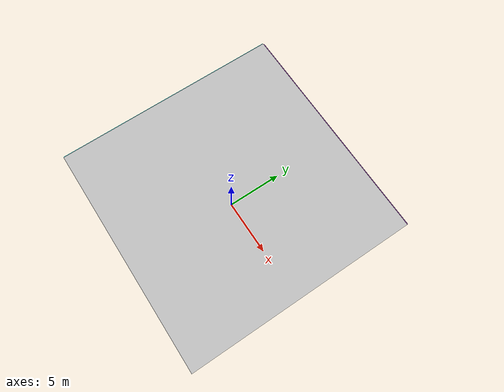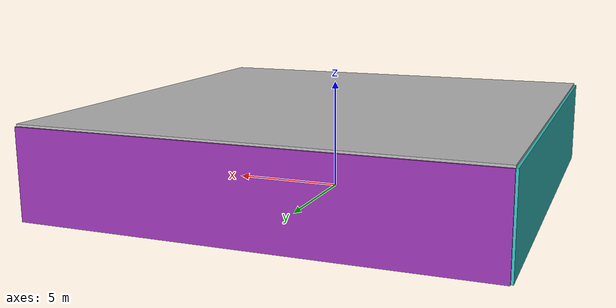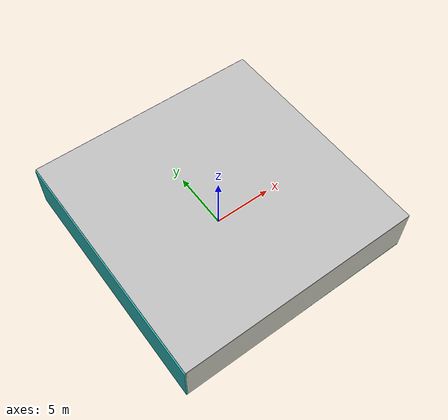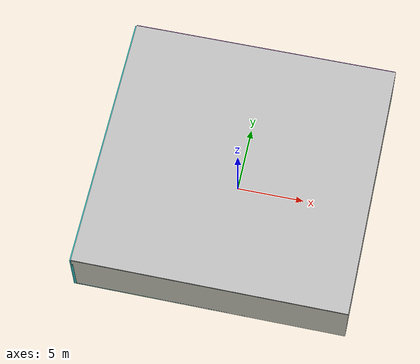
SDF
<sdf version="1.4">
 <world name="default">
  <physics type="ode">
   <max_step_size>0.001</max_step_size>
   <real_time_factor>1</real_time_factor>
   <real_time_update_rate>1000</real_time_update_rate>
   <gravity>0 0 -9.8</gravity>
  </physics>
  <scene><ambient>0.4 0.4 0.4 1</ambient><background>0.7 0.7 0.7 1</background><shadows>1</shadows></scene>
  <model name="Surrounding">
   <static>1</static>
   <link name="Ceiling">
    <collision name="Ceiling_Collision"><geometry><box><size>20 20 0.1</size></box></geometry></collision>
    <visual name="Ceiling_Visual">
     <geometry><box><size>20 20 0.1</size></box></geometry>
     <material>
      <script><uri>file://media/materials/scripts/gazebo.material</uri><name>Gazebo/LightOn</name></script>
     </material>
    </visual>
    <pose>0 0 4.05 0 0 0</pose>
   </link>
   <link name="Wall_South">
    <collision name="Wall_South_Collision">
     <geometry><box><size>20 0 4</size></box></geometry>
     <pose>0 0 2 0 -0 0</pose>
    </collision>
    <visual name="Wall_South_Visual">
     <pose>0 0 2 0 -0 0</pose>
     <geometry><box><size>20 0 4</size></box></geometry>
     <material>
      <script><uri>file://media/materials/scripts/gazebo.material</uri><name>Gazebo/PaintedWall</name></script>
     </material>
    </visual>
    <velocity_decay><linear>0</linear><angular>0</angular></velocity_decay>
    <pose>0 -10 0 0 -0 0</pose>
   </link>
   <link name="Wall_East">
    <collision name="Wall_21_Collision">
     <geometry><box><size>20 0 4</size></box></geometry>
     <pose>0 0 2 0 -0 0</pose>
    </collision>
    <visual name="Wall_21_Visual">
     <pose>0 0 2 0 -0 0</pose>
     <geometry><box><size>20 0 4</size></box></geometry>
     <material>
      <script><uri>file://media/materials/scripts/gazebo.material</uri><name>Gazebo/LightOn</name></script>
     </material>
    </visual>
    <velocity_decay><linear>0</linear><angular>0</angular></velocity_decay>
    <pose>10 0 0 0 -0 1.5708</pose>
   </link>
   <link name="Wall_North">
    <collision name="Wall_22_Collision">
     <geometry><box><size>20 0.2 4</size></box></geometry>
     <pose>0 0 2 0 -0 0</pose>
    </collision>
    <visual name="Wall_22_Visual">
     <pose>0 0 2 0 -0 0</pose>
     <geometry><box><size>20 0.2 4</size></box></geometry>
     <material>
      <script><uri>file://media/materials/scripts/gazebo.material</uri><name>Gazebo/Purple</name></script>
     </material>
    </visual>
    <velocity_decay><linear>0</linear><angular>0</angular></velocity_decay>
    <pose>0 10 0 0 -0 0</pose>
   </link>
   <link name="Wall_West">
    <collision name="Wall_23_Collision">
     <geometry><box><size>20 0.2 4</size></box></geometry>
     <pose>0 0 2 0 -0 0</pose>
    </collision>
    <visual name="Wall_23_Visual">
     <pose>0 0 2 0 -0 0</pose>
     <geometry><box><size>20 0.2 4</size></box></geometry>
     <material>
      <script><uri>file://media/materials/scripts/gazebo.material</uri><name>Gazebo/Turquoise</name></script>
     </material>
    </visual>
    <velocity_decay><linear>0</linear><angular>0</angular></velocity_decay>
    <pose>-10 0 0 0 0 -1.5708</pose>
   </link>
   <link name="Ground_link">
    <collision name="collision">
     <pose>0 0 .05 0 -0 0</pose>
     <geometry><box><size>20 20 0.1</size></box></geometry>
    </collision>
    <visual name="visual">
     <pose>0 0 .05 0 -0 0</pose>
     <geometry><box><size>20 20 0.1</size></box></geometry>
     <material>
      <script><uri>file://media/materials/scripts/gazebo.material</uri><name>Gazebo/TurquoiseGlow</name></script>
     </material>
    </visual>
   </link>
   <static>1</static>
  </model>
  <spherical_coordinates>
   <surface_model>EARTH_WGS84</surface_model>
   <latitude_deg>0</latitude_deg>
   <longitude_deg>0</longitude_deg>
   <elevation>0</elevation>
   <heading_deg>0</heading_deg>
  </spherical_coordinates>
  <light name="lightball_0" type="diffuse">
   <diffuse>0.8 0.8 0.8 1</diffuse>
   <specular>0.2 0.2 0.2 1</specular>
   <attenuation>
    <range>100</range>
    <constant>0.7</constant>
    <linear>0.01</linear>
    <quadratic>0.001</quadratic>
   </attenuation>
   <direction>-0.5 0.1 -0.9</direction>
   <pose>-9.89975269051 8.43248369843 2.06150548252 0 0 0</pose>
  </light>
  <light name="lightball_1" type="diffuse">
   <diffuse>0.8 0.8 0.8 1</diffuse>
   <specular>0.2 0.2 0.2 1</specular>
   <attenuation>
    <range>100</range>
    <constant>0.7</constant>
    <linear>0.01</linear>
    <quadratic>0.001</quadratic>
   </attenuation>
   <direction>-0.5 0.1 -0.9</direction>
   <pose>5.02846828001 -9.54278159894 1.25798464029 0 0 0</pose>
  </light>
  <light name="lightball_2" type="diffuse">
   <diffuse>0.8 0.8 0.8 1</diffuse>
   <specular>0.2 0.2 0.2 1</specular>
   <attenuation>
    <range>100</range>
    <constant>0.7</constant>
    <linear>0.01</linear>
    <quadratic>0.001</quadratic>
   </attenuation>
   <direction>-0.5 0.1 -0.9</direction>
   <pose>-8.77798007786 5.29573162817 1.37481632016 0 0 0</pose>
  </light>
  <light name="lightball_3" type="diffuse">
   <diffuse>0.8 0.8 0.8 1</diffuse>
   <specular>0.2 0.2 0.2 1</specular>
   <attenuation>
    <range>100</range>
    <constant>0.7</constant>
    <linear>0.01</linear>
    <quadratic>0.001</quadratic>
   </attenuation>
   <direction>-0.5 0.1 -0.9</direction>
   <pose>2.53090638657 2.37317381469 0.822775719798 0 0 0</pose>
  </light>
  <light name="lightball_4" type="diffuse">
   <diffuse>0.8 0.8 0.8 1</diffuse>
   <specular>0.2 0.2 0.2 1</specular>
   <attenuation>
    <range>100</range>
    <constant>0.7</constant>
    <linear>0.01</linear>
    <quadratic>0.001</quadratic>
   </attenuation>
   <direction>-0.5 0.1 -0.9</direction>
   <pose>-3.97311224942 0.950142960276 0.919212250808 0 0 0</pose>
  </light>
  <light name="lightball_5" type="diffuse">
   <diffuse>0.8 0.8 0.8 1</diffuse>
   <specular>0.2 0.2 0.2 1</specular>
   <attenuation>
    <range>100</range>
    <constant>0.7</constant>
    <linear>0.01</linear>
    <quadratic>0.001</quadratic>
   </attenuation>
   <direction>-0.5 0.1 -0.9</direction>
   <pose>0.334188295102 1.66099004249 1.29875386388 0 0 0</pose>
  </light>
  <light name="lightball_6" type="diffuse">
   <diffuse>0.8 0.8 0.8 1</diffuse>
   <specular>0.2 0.2 0.2 1</specular>
   <attenuation>
    <range>100</range>
    <constant>0.7</constant>
    <linear>0.01</linear>
    <quadratic>0.001</quadratic>
   </attenuation>
   <direction>-0.5 0.1 -0.9</direction>
   <pose>-1.50971142817 -1.71838163515 0.521801000497 0 0 0</pose>
  </light>
  <light name="lightball_7" type="diffuse">
   <diffuse>0.8 0.8 0.8 1</diffuse>
   <specular>0.2 0.2 0.2 1</specular>
   <attenuation>
    <range>100</range>
    <constant>0.7</constant>
    <linear>0.01</linear>
    <quadratic>0.001</quadratic>
   </attenuation>
   <direction>-0.5 0.1 -0.9</direction>
   <pose>1.61294514635 -7.75353151995 3.8431539121 0 0 0</pose>
  </light>
  <light name="lightball_8" type="diffuse">
   <diffuse>0.8 0.8 0.8 1</diffuse>
   <specular>0.2 0.2 0.2 1</specular>
   <attenuation>
    <range>100</range>
    <constant>0.7</constant>
    <linear>0.01</linear>
    <quadratic>0.001</quadratic>
   </attenuation>
   <direction>-0.5 0.1 -0.9</direction>
   <pose>-8.64337775967 1.5330101982 2.31584464536 0 0 0</pose>
  </light>
  <light name="lightball_9" type="diffuse">
   <diffuse>0.8 0.8 0.8 1</diffuse>
   <specular>0.2 0.2 0.2 1</specular>
   <attenuation>
    <range>100</range>
    <constant>0.7</constant>
    <linear>0.01</linear>
    <quadratic>0.001</quadratic>
   </attenuation>
   <direction>-0.5 0.1 -0.9</direction>
   <pose>-3.39358411244 -4.00401392965 0.780216949422 0 0 0</pose>
  </light>
  <light name="lightball_10" type="diffuse">
   <diffuse>0.8 0.8 0.8 1</diffuse>
   <specular>0.2 0.2 0.2 1</specular>
   <attenuation>
    <range>100</range>
    <constant>0.7</constant>
    <linear>0.01</linear>
    <quadratic>0.001</quadratic>
   </attenuation>
   <direction>-0.5 0.1 -0.9</direction>
   <pose>-7.39658613995 2.06264067239 3.51642648757 0 0 0</pose>
  </light>
  <light name="lightball_11" type="diffuse">
   <diffuse>0.8 0.8 0.8 1</diffuse>
   <specular>0.2 0.2 0.2 1</specular>
   <attenuation>
    <range>100</range>
    <constant>0.7</constant>
    <linear>0.01</linear>
    <quadratic>0.001</quadratic>
   </attenuation>
   <direction>-0.5 0.1 -0.9</direction>
   <pose>9.41773027921 0.904508482649 2.22865617701 0 0 0</pose>
  </light>
  <light name="lightball_12" type="diffuse">
   <diffuse>0.8 0.8 0.8 1</diffuse>
   <specular>0.2 0.2 0.2 1</specular>
   <attenuation>
    <range>100</range>
    <constant>0.7</constant>
    <linear>0.01</linear>
    <quadratic>0.001</quadratic>
   </attenuation>
   <direction>-0.5 0.1 -0.9</direction>
   <pose>-4.61401169993 4.8432530894 3.17573443893 0 0 0</pose>
  </light>
  <light name="lightball_13" type="diffuse">
   <diffuse>0.8 0.8 0.8 1</diffuse>
   <specular>0.2 0.2 0.2 1</specular>
   <attenuation>
    <range>100</range>
    <constant>0.7</constant>
    <linear>0.01</linear>
    <quadratic>0.001</quadratic>
   </attenuation>
   <direction>-0.5 0.1 -0.9</direction>
   <pose>-1.3248045403 -4.70534900794 3.17630970271 0 0 0</pose>
  </light>
  <include><uri>model://cabinet</uri><pose>-7.17567072908 -7.83735037207 0 0 0 1.57185663818</pose></include>
  <include><uri>model://table</uri><pose>-3.85720529588 -7.00738203352 0 0 0 0.208759235908</pose></include>
  <include><uri>model://cabinet</uri><pose>-4.01730315465 8.08396998807 0 0 0 1.18880313314</pose></include>
  <include><uri>model://cabinet</uri><pose>1.37325925247 2.09444454748 0 0 0 2.19381778943</pose></include>
  <include><uri>model://cabinet</uri><pose>7.21596668063 4.73351779323 0 0 0 1.06001832877</pose></include>
 </world>
</sdf>

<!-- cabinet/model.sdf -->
<sdf version="1.5">
  <model name="cabinet">
    <static>true</static>
    <link name="cabinet_bottom_plate">
      <inertial>
        <pose>0 0 -1 0 0 0</pose>
        <inertia>
          <ixx>2.050000</ixx>
          <ixy>0</ixy>
          <ixz>0</ixz>
          <iyy>2.050000</iyy>
          <iyz>0</iyz>
          <izz>2.050000</izz>
        </inertia>
        <mass>25.000000</mass>
      </inertial>
      <collision name="cabinet_bottom_plate_geom">
        <pose>0 0 0.010000 0 0 0</pose>
        <geometry>
          <box>
            <size>0.450000 0.450000 0.020000</size>
          </box>
        </geometry>
      </collision>
      <visual name="cabinet_bottom_plate_geom_visual">
        <pose>0 0 0.010000 0 0 0</pose>
        <geometry>
          <box>
            <size>0.450000 0.450000 0.020000</size>
          </box>
        </geometry>
        <material>
          <script>
            <uri>model://media/materials/scripts/gazebo.material</uri>
            <name>Gazebo/Wood</name>
          </script>
        </material>
      </visual>
      <collision name="cabinet_bottom_plate_geom_cabinet_back_plate">
        <pose>0.235000 0 0.510000 0 0 0</pose>
        <geometry>
          <box>
            <size>0.020000 0.450000 1.020000</size>
          </box>
        </geometry>
      </collision>
      <visual name="cabinet_bottom_plate_geom_cabinet_back_plate_visual">
        <pose>0.235000 0 0.510000 0 0 0</pose>
        <geometry>
          <box>
            <size>0.020000 0.450000 1.020000</size>
          </box>
        </geometry>
        <material>
          <script>
            <uri>model://media/materials/scripts/gazebo.material</uri>
            <name>Gazebo/Wood</name>
          </script>
        </material>
      </visual>
      <collision name="cabinet_bottom_plate_geom_cabinet_left_plate">
        <pose>0 0.235000 0.510000 0 0 0</pose>
        <geometry>
          <box>
            <size>0.450000 0.020000 1.020000</size>
          </box>
        </geometry>
      </collision>
      <visual name="cabinet_bottom_plate_geom_cabinet_left_plate_visual">
        <pose>0 0.235000 0.510000 0 0 0</pose>
        <geometry>
          <box>
            <size>0.450000 0.020000 1.020000</size>
          </box>
        </geometry>
        <material>
          <script>
            <uri>model://media/materials/scripts/gazebo.material</uri>
            <name>Gazebo/Wood</name>
          </script>
        </material>
      </visual>
      <collision name="cabinet_bottom_plate_geom_cabinet_middle_plate">
        <pose>0 0 0.510000 0 0 0</pose>
        <geometry>
          <box>
            <size>0.450000 0.450000 0.020000</size>
          </box>
        </geometry>
      </collision>
      <visual name="cabinet_bottom_plate_geom_cabinet_middle_plate_visual">
        <pose>0 0 0.510000 0 0 0</pose>
        <geometry>
          <box>
            <size>0.450000 0.450000 0.020000</size>
          </box>
        </geometry>
        <material>
          <script>
            <uri>model://media/materials/scripts/gazebo.material</uri>
            <name>Gazebo/Wood</name>
          </script>
        </material>
      </visual>
      <collision name="cabinet_bottom_plate_geom_cabinet_right_plate">
        <pose>0 -0.235000 0.510000 0 0 0</pose>
        <geometry>
          <box>
            <size>0.450000 0.020000 1.020000</size>
          </box>
        </geometry>
      </collision>
      <visual name="cabinet_bottom_plate_geom_cabinet_right_plate_visual">
        <pose>0 -0.235000 0.510000 0 0 0</pose>
        <geometry>
          <box>
            <size>0.450000 0.020000 1.020000</size>
          </box>
        </geometry>
        <material>
          <script>
            <uri>model://media/materials/scripts/gazebo.material</uri>
            <name>Gazebo/Wood</name>
          </script>
        </material>
      </visual>
      <collision name="cabinet_bottom_plate_geom_cabinet_top_plate">
        <pose>0 0 1.010000 0 0 0</pose>
        <geometry>
          <box>
            <size>0.450000 0.450000 0.020000</size>
          </box>
        </geometry>
      </collision>
      <visual name="cabinet_bottom_plate_geom_cabinet_top_plate_visual">
        <pose>0 0 1.010000 0 0 0</pose>
        <geometry>
          <box>
            <size>0.450000 0.450000 0.020000</size>
          </box>
        </geometry>
        <material>
          <script>
            <uri>model://media/materials/scripts/gazebo.material</uri>
            <name>Gazebo/Wood</name>
          </script>
        </material>
      </visual>
    </link>
  </model>
</sdf>

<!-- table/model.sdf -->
<sdf version="1.5">
  <model name="table">
    <static>true</static>
    <link name="link">
      <collision name="surface">
        <pose>0 0 1.0 0 0 0</pose>
        <geometry>
          <box>
            <size>1.5 0.8 0.03</size>
          </box>
        </geometry>
        <surface>
          <friction>
            <ode>
              <mu>0.6</mu>
              <mu2>0.6</mu2>
            </ode>
          </friction>
        </surface>
      </collision>
      <visual name="visual1">
        <pose>0 0 1.0 0 0 0</pose>
        <geometry>
          <box>
            <size>1.5 0.8 0.03</size>
          </box>
        </geometry>
        <material>
          <script>
            <uri>model://media/materials/scripts/gazebo.material</uri>
            <name>Gazebo/Wood</name>
          </script>
        </material>
      </visual>
      <collision name="front_left_leg">
        <pose>0.68 0.38 0.5 0 0 0</pose>
        <geometry>
          <cylinder>
            <radius>0.02</radius>
            <length>1.0</length>
          </cylinder>
        </geometry>
      </collision>
      <visual name="front_left_leg">
        <pose>0.68 0.38 0.5 0 0 0</pose>
        <geometry>
          <cylinder>
            <radius>0.02</radius>
            <length>1.0</length>
          </cylinder>
        </geometry>
        <material>
          <script>
            <uri>model://media/materials/scripts/gazebo.material</uri>
            <name>Gazebo/Grey</name>
          </script>
        </material>
      </visual>
      <collision name="front_right_leg">
        <pose>0.68 -0.38 0.5 0 0 0</pose>
        <geometry>
          <cylinder>
            <radius>0.02</radius>
            <length>1.0</length>
          </cylinder>
        </geometry>
      </collision>
      <visual name="front_right_leg">
        <pose>0.68 -0.38 0.5 0 0 0</pose>
        <geometry>
          <cylinder>
            <radius>0.02</radius>
            <length>1.0</length>
          </cylinder>
        </geometry>
        <material>
          <script>
            <uri>model://media/materials/scripts/gazebo.material</uri>
            <name>Gazebo/Grey</name>
          </script>
        </material>
      </visual>
      <collision name="back_right_leg">
        <pose>-0.68 -0.38 0.5 0 0 0</pose>
        <geometry>
          <cylinder>
            <radius>0.02</radius>
            <length>1.0</length>
          </cylinder>
        </geometry>
      </collision>
      <visual name="back_right_leg">
        <pose>-0.68 -0.38 0.5 0 0 0</pose>
        <geometry>
          <cylinder>
            <radius>0.02</radius>
            <length>1.0</length>
          </cylinder>
        </geometry>
        <material>
          <script>
            <uri>model://media/materials/scripts/gazebo.material</uri>
            <name>Gazebo/Grey</name>
          </script>
        </material>
      </visual>
      <collision name="back_left_leg">
        <pose>-0.68 0.38 0.5 0 0 0</pose>
        <geometry>
          <cylinder>
            <radius>0.02</radius>
            <length>1.0</length>
          </cylinder>
        </geometry>
      </collision>
      <visual name="back_left_leg">
        <pose>-0.68 0.38 0.5 0 0 0</pose>
        <geometry>
          <cylinder>
            <radius>0.02</radius>
            <length>1.0</length>
          </cylinder>
        </geometry>
        <material>
          <script>
            <uri>model://media/materials/scripts/gazebo.material</uri>
            <name>Gazebo/Grey</name>
          </script>
        </material>
      </visual>
    </link>
  </model>
</sdf>
